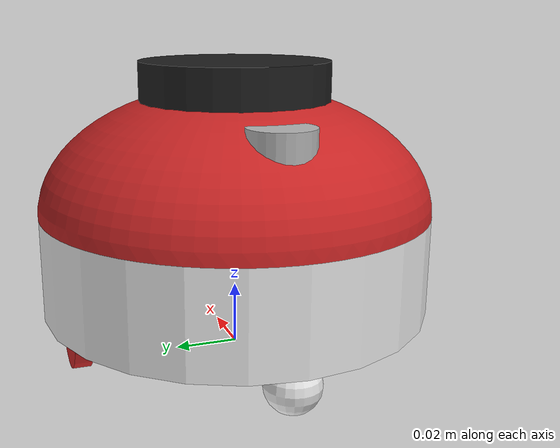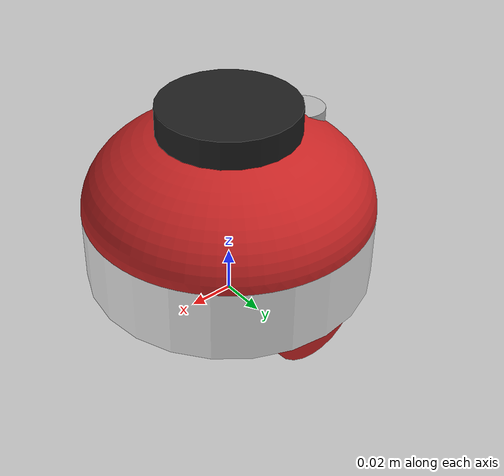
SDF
<sdf version='1.7'>
  <model name='makerspet_mini'>
    <link name='base_footprint'>
      <inertial>
        <pose>-0.0065 0 0.042843 0 -0 0</pose>
        <mass>0.7</mass>
        <inertia>
          <ixx>0.000982872</ixx>
          <ixy>1.4408e-20</ixy>
          <ixz>-2.666e-05</ixz>
          <iyy>0.00141365</iyy>
          <iyz>-5.95525e-20</iyz>
          <izz>0.00063588</izz>
        </inertia>
      </inertial>
      <collision name='base_footprint_fixed_joint_lump__base_link_collision'>
        <pose>0 0 0.0309 0 -0 0</pose>
        <geometry>
          <cylinder>
            <length>0.032</length>
            <radius>0.062</radius>
          </cylinder>
        </geometry>
        <surface>
          <contact>
            <ode/>
          </contact>
          <friction>
            <ode/>
          </friction>
        </surface>
      </collision>
      <collision name='base_footprint_fixed_joint_lump__caster_link_collision_1'>
        <pose>-0.051 0 0.0085 0 -0 0</pose>
        <geometry>
          <sphere>
            <radius>0.0085</radius>
          </sphere>
        </geometry>
        <surface>
          <contact>
            <ode/>
          </contact>
          <friction>
            <ode>
              <mu>0.2</mu>
              <mu2>0.2</mu2>
            </ode>
          </friction>
        </surface>
      </collision>
      <collision name='base_footprint_fixed_joint_lump__head_link_collision_2'>
        <pose>0 0 0.0663 0 -0 0</pose>
        <geometry>
          <cylinder>
            <length>0.0388</length>
            <radius>0.062</radius>
          </cylinder>
        </geometry>
        <surface>
          <contact>
            <ode/>
          </contact>
          <friction>
            <ode/>
          </friction>
        </surface>
      </collision>
      <collision name='base_footprint_fixed_joint_lump__base_scan_collision_3'>
        <pose>0 0 0.0853 3.14159 -0 3.14159</pose>
        <geometry>
          <cylinder>
            <length>0.016</length>
            <radius>0.03</radius>
          </cylinder>
        </geometry>
        <surface>
          <contact>
            <ode/>
          </contact>
          <friction>
            <ode/>
          </friction>
        </surface>
      </collision>
      <collision name='base_footprint_fixed_joint_lump__scan_motor_collision_4'>
        <pose>-0.04 0 0.0733 0 0 0</pose>
        <geometry>
          <cylinder>
            <length>0.01</length>
            <radius>0.01</radius>
          </cylinder>
        </geometry>
      </collision>
      <visual name='base_footprint_fixed_joint_lump__base_link_visual'>
        <pose>0 0 0.0309 0 -0 0</pose>
        <geometry>
          <cylinder>
            <length>0.032</length>
            <radius>0.062</radius>
          </cylinder>
        </geometry>
        <material>
          <script>
            <name>Gazebo/White</name>
            <uri>file://media/materials/scripts/gazebo.material</uri>
          </script>
        </material>
      </visual>
      <visual name='base_footprint_fixed_joint_lump__caster_link_visual_1'>
        <pose>-0.051 0 0.0085 0 -0 0</pose>
        <geometry>
          <sphere>
            <radius>0.0085</radius>
          </sphere>
        </geometry>
        <material>
          <script>
            <name>Gazebo/White</name>
            <uri>file://media/materials/scripts/gazebo.material</uri>
          </script>
        </material>
      </visual>
      <visual name='base_footprint_fixed_joint_lump__head_link_visual_2'>
        <pose>0 0 0.0469 0 -0 0</pose>
        <geometry>
          <mesh>
            <scale>0.000124 0.000124 7.8e-05</scale>
            <uri>model://makerspet_mini/mesh/hemisphere.stl</uri>
          </mesh>
        </geometry>
        <material>
          <script>
            <name>Gazebo/Red</name>
            <uri>file://media/materials/scripts/gazebo.material</uri>
          </script>
        </material>
      </visual>
      <visual name='base_footprint_fixed_joint_lump__base_scan_visual_3'>
        <pose>0 0 0.0853 3.14159 -0 3.14159</pose>
        <geometry>
          <cylinder>
            <length>0.016</length>
            <radius>0.03</radius>
          </cylinder>
        </geometry>
        <material>
          <script>
            <name>Gazebo/Black</name>
            <uri>file://media/materials/scripts/gazebo.material</uri>
          </script>
        </material>
      </visual>
      <visual name='base_footprint_fixed_joint_lump__scan_motor_visual_4'>
        <pose>-0.04 0 0.0733 0 0 0</pose>
        <geometry>
          <cylinder>
            <length>0.01</length>
            <radius>0.01</radius>
          </cylinder>
        </geometry>
      </visual>
      <sensor name='laser_scan_sensor' type='ray'>
        <visualize>0</visualize>
        <always_on>1</always_on>
        <update_rate>5</update_rate>
        <ray>
          <scan>
            <horizontal>
              <samples>360</samples>
              <resolution>1</resolution>
              <min_angle>0</min_angle>
              <max_angle>6.28319</max_angle>
            </horizontal>
          </scan>
          <range>
            <min>0.1</min>
            <max>10</max>
            <resolution>0.02</resolution>
          </range>
          <noise>
            <type>gaussian</type>
            <mean>0</mean>
            <stddev>0.01</stddev>
          </noise>
        </ray>
        <plugin name='laser_scan_plugin' filename='libgazebo_ros_ray_sensor.so'>
          <ros>
            <remapping>~/out:=scan</remapping>
          </ros>
          <output_type>sensor_msgs/LaserScan</output_type>
          <frame_name>base_scan</frame_name>
        </plugin>
        <pose>0 0 0.0853 3.14159 -0 3.14159</pose>
      </sensor>
    </link>
    <joint name='wheel_left_joint' type='revolute'>
      <pose relative_to='base_footprint'>0 0.052522 0.0215 -1.5708 0 0</pose>
      <parent>base_footprint</parent>
      <child>wheel_left_link</child>
      <axis>
        <xyz>0 0 1</xyz>
        <limit>
          <lower>-1e+16</lower>
          <upper>1e+16</upper>
        </limit>
        <dynamics>
          <spring_reference>0</spring_reference>
          <spring_stiffness>0</spring_stiffness>
        </dynamics>
      </axis>
    </joint>
    <link name='wheel_left_link'>
      <pose relative_to='wheel_left_joint'>0 0 0 0 -0 0</pose>
      <inertial>
        <pose>0 0 0 1.5708 -0 0</pose>
        <mass>0.05</mass>
        <inertia>
          <ixx>5.90417e-06</ixx>
          <ixy>0</ixy>
          <ixz>0</ixz>
          <iyy>5.90417e-06</iyy>
          <iyz>0</iyz>
          <izz>1.15562e-05</izz>
        </inertia>
      </inertial>
      <collision name='wheel_left_link_collision'>
        <pose>0 0 0 0 -0 0</pose>
        <geometry>
          <cylinder>
            <length>0.0055</length>
            <radius>0.0215</radius>
          </cylinder>
        </geometry>
        <surface>
          <contact>
            <ode/>
          </contact>
          <friction>
            <ode>
              <mu>0.2</mu>
              <mu2>0.2</mu2>
            </ode>
          </friction>
        </surface>
      </collision>
      <visual name='wheel_left_link_visual'>
        <pose>0 0 0 0 -0 0</pose>
        <geometry>
          <cylinder>
            <length>0.0055</length>
            <radius>0.0215</radius>
          </cylinder>
        </geometry>
        <material>
          <script>
            <name>Gazebo/Red</name>
            <uri>file://media/materials/scripts/gazebo.material</uri>
          </script>
        </material>
      </visual>
    </link>
    <joint name='wheel_right_joint' type='revolute'>
      <pose relative_to='base_footprint'>0 -0.052522 0.0215 -1.5708 0 0</pose>
      <parent>base_footprint</parent>
      <child>wheel_right_link</child>
      <axis>
        <xyz>0 0 1</xyz>
        <limit>
          <lower>-1e+16</lower>
          <upper>1e+16</upper>
        </limit>
        <dynamics>
          <spring_reference>0</spring_reference>
          <spring_stiffness>0</spring_stiffness>
        </dynamics>
      </axis>
    </joint>
    <link name='wheel_right_link'>
      <pose relative_to='wheel_right_joint'>0 0 0 0 -0 0</pose>
      <inertial>
        <pose>0 0 0 1.5708 -0 0</pose>
        <mass>0.05</mass>
        <inertia>
          <ixx>5.90417e-06</ixx>
          <ixy>0</ixy>
          <ixz>0</ixz>
          <iyy>5.90417e-06</iyy>
          <iyz>0</iyz>
          <izz>1.15562e-05</izz>
        </inertia>
      </inertial>
      <collision name='wheel_right_link_collision'>
        <pose>0 0 0 0 -0 0</pose>
        <geometry>
          <cylinder>
            <length>0.0055</length>
            <radius>0.0215</radius>
          </cylinder>
        </geometry>
        <surface>
          <contact>
            <ode/>
          </contact>
          <friction>
            <ode>
              <mu>0.2</mu>
              <mu2>0.2</mu2>
            </ode>
          </friction>
        </surface>
      </collision>
      <visual name='wheel_right_link_visual'>
        <pose>0 0 0 0 -0 0</pose>
        <geometry>
          <cylinder>
            <length>0.0055</length>
            <radius>0.0215</radius>
          </cylinder>
        </geometry>
        <material>
          <script>
            <name>Gazebo/Red</name>
            <uri>file://media/materials/scripts/gazebo.material</uri>
          </script>
        </material>
      </visual>
    </link>
    <plugin name='differential_drive_plugin' filename='libgazebo_ros_diff_drive.so'>
      <update_rate>30</update_rate>
      <left_joint>wheel_left_joint</left_joint>
      <right_joint>wheel_right_joint</right_joint>
      <wheel_separation>0.105043</wheel_separation>
      <wheel_diameter>0.043</wheel_diameter>
      <max_wheel_torque>0.171616375</max_wheel_torque>
      <max_wheel_acceleration>1</max_wheel_acceleration>
      <command_topic>cmd_vel</command_topic>
      <publish_odom>1</publish_odom>
      <publish_odom_tf>1</publish_odom_tf>
      <publish_wheel_tf>0</publish_wheel_tf>
      <odometry_topic>odom</odometry_topic>
      <odometry_frame>odom</odometry_frame>
      <robot_base_frame>base_footprint</robot_base_frame>
    </plugin>
    <static>0</static>
    <plugin name='joint_state_plugin' filename='libgazebo_ros_joint_state_publisher.so'>
      <ros>
        <remapping>~/out:=joint_states</remapping>
      </ros>
      <update_rate>30</update_rate>
      <joint_name>wheel_left_joint</joint_name>
      <joint_name>wheel_right_joint</joint_name>
    </plugin>
  </model>
</sdf>
